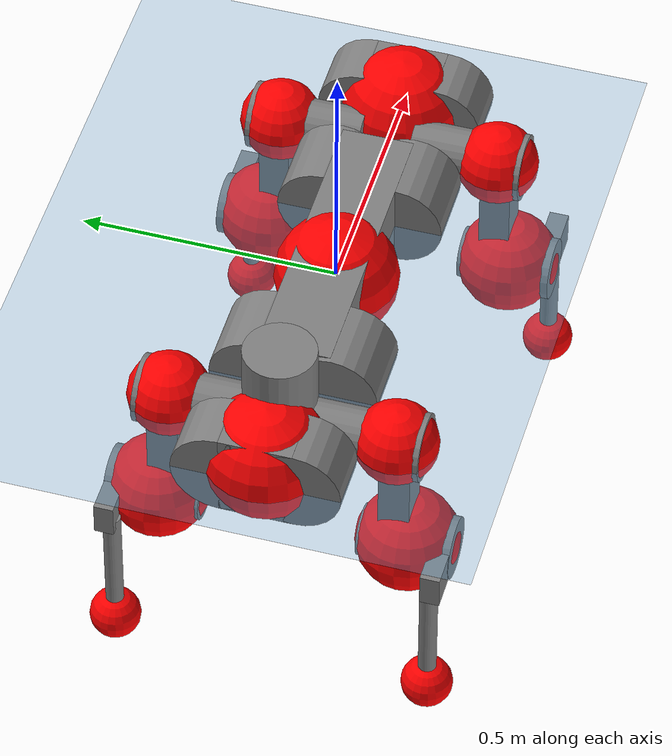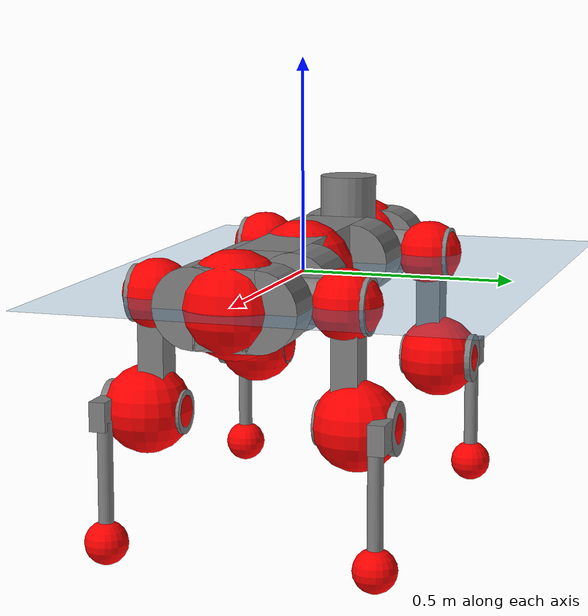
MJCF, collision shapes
<mujoco model="anymal_c">
  <compiler angle="radian" assetdir="assets" balanceinertia="true" inertiafromgeom="false"/>

  <option timestep="0.005" density="1.2" viscosity="2e-05"/>

  <size nkey="1"/>

  <visual>
    <quality shadowsize="8192"/>
    <map shadowclip="0.5"/>
  </visual>

  <default>
    <default class="/">
      <material specular="0" shininess="0.25"/>
      <geom contype="0" conaffinity="0" group="1" solref="-1000 -80"/>
      <site size="0.01 0.005 0.005" group="5"/>
      <general forcelimited="true" forcerange="-80 80" biastype="affine" gainprm="80" biasprm="0 -80 -2"/>
      <default class="anymal_c">
        <joint armature="0.01" damping="0.01" frictionloss="0.1"/>
        <default class="visual">
          <geom type="mesh" group="2"/>
          <default class="visual_zflip"/>
        </default>
        <default class="collision">
          <geom type="cylinder" group="3"/>
          <default class="foot">
            <geom size="0.03 0 0" type="sphere" condim="6" priority="1" friction="0.8 0.02 0.01" solimp="0.015 1 0.03"/>
          </default>
        </default>
      </default>
      <default class="reward_collision_sphere">
        <geom group="5" rgba="1 0 0 1"/>
      </default>
    </default>
  </default>

  <asset>
    <texture type="skybox" colorspace="auto" name="//unnamed_texture_0" builtin="gradient" rgb1="0.95 0.95 0.95" rgb2="0.95 0.95 0.95" width="100" height="600"/>
    <texture type="2d" colorspace="auto" name="texplane" builtin="checker" rgb1="0.345 0.575 0.748" rgb2="0.345 0.575 0.748" markrgb="1 1 1" width="512" height="512"/>
    <texture type="2d" colorspace="linear" name="base" file="base.png"/>
    <texture type="2d" colorspace="linear" name="top_shell" file="top_shell.png"/>
    <texture type="2d" colorspace="linear" name="bottom_shell" file="bottom_shell.png"/>
    <texture type="2d" colorspace="linear" name="remote" file="remote.png"/>
    <texture type="2d" colorspace="linear" name="hatch" file="hatch.png"/>
    <texture type="2d" colorspace="linear" name="handle" file="handle.png"/>
    <texture type="2d" colorspace="linear" name="face" file="face.png"/>
    <texture type="2d" colorspace="linear" name="battery" file="battery.png"/>
    <texture type="2d" colorspace="linear" name="lidar_cage" file="lidar_cage.png"/>
    <texture type="2d" colorspace="linear" name="depth_camera" file="depth_camera.png"/>
    <texture type="2d" colorspace="linear" name="wide_angle_camera" file="wide_angle_camera.png"/>
    <texture type="2d" colorspace="linear" name="lidar" file="lidar.png"/>
    <texture type="2d" colorspace="linear" name="drive" file="drive.png"/>
    <texture type="2d" colorspace="linear" name="hip_l" file="hip_l.png"/>
    <texture type="2d" colorspace="linear" name="shank_l" file="shank_l.png"/>
    <texture type="2d" colorspace="linear" name="foot" file="foot.png"/>
    <texture type="2d" colorspace="linear" name="thigh" file="thigh.png"/>
    <texture type="2d" colorspace="linear" name="shank_r" file="shank_r.png"/>
    <texture type="2d" colorspace="linear" name="hip_r" file="hip_r.png"/>
    <material name="MatPlane" class="/" texture="texplane" texuniform="true" texrepeat="2 2" specular="0.9" shininess="0.5"/>
    <material name="black_plastic" class="/" rgba="0.007 0.007 0.007 1"/>
    <material name="green" class="/" rgba="0.052 0.178 0.033 1"/>
    <material name="red" class="/" rgba="0.178 0.006 0.005 1"/>
    <material name="yellow" class="/" rgba="0.178 0.119 0.006 1"/>
    <material name="lwl" class="/" rgba="0.8 0.8 0.8 1"/>
    <material name="base" class="/" texture="base"/>
    <material name="top_shell" class="/" texture="top_shell"/>
    <material name="bottom_shell" class="/" texture="bottom_shell"/>
    <material name="hip_l" class="/" texture="hip_l"/>
    <material name="thigh" class="/" texture="thigh"/>
    <material name="shank_l" class="/" texture="shank_l"/>
    <material name="foot" class="/" texture="foot"/>
    <material name="hip_r" class="/" texture="hip_r"/>
    <material name="shank" class="/" texture="shank_r"/>
    <material name="hatch" class="/" texture="hatch"/>
    <material name="remote" class="/" texture="remote"/>
    <material name="handle" class="/" texture="handle"/>
    <material name="face" class="/" texture="face"/>
    <material name="depth_camera" class="/" texture="depth_camera"/>
    <material name="wide_angle_camera" class="/" texture="wide_angle_camera"/>
    <material name="battery" class="/" texture="battery"/>
    <material name="lidar_cage" class="/" texture="lidar_cage"/>
    <material name="lidar" class="/" texture="lidar"/>
    <material name="drive" class="/" texture="drive"/>
    <mesh name="base_0" class="/" file="base_0.obj"/>
    <mesh name="base_1" class="/" file="base_1.obj"/>
    <mesh name="base_2" class="/" file="base_2.obj"/>
    <mesh name="base_3" class="/" file="base_3.obj"/>
    <mesh name="base_4" class="/" file="base_4.obj"/>
    <mesh name="base_5" class="/" file="base_5.obj"/>
    <mesh name="top_shell" class="/" file="top_shell.obj"/>
    <mesh name="bottom_shell" class="/" file="bottom_shell.obj"/>
    <mesh name="remote" class="/" file="remote.obj"/>
    <mesh name="handle" class="/" file="handle.obj"/>
    <mesh name="face" class="/" file="face.obj"/>
    <mesh name="wide_angle_camera" class="/" file="wide_angle_camera.obj"/>
    <mesh name="depth_camera" class="/" file="depth_camera.obj"/>
    <mesh name="battery" class="/" file="battery.obj"/>
    <mesh name="lidar_cage" class="/" file="lidar_cage.obj"/>
    <mesh name="lidar" class="/" file="lidar.obj"/>
    <mesh name="drive" class="/" file="drive.obj"/>
    <mesh name="hip_l" class="/" file="hip_l.obj"/>
    <mesh name="thigh" class="/" file="thigh.obj"/>
    <mesh name="shank_l" class="/" file="shank_l.obj"/>
    <mesh name="foot" class="/" file="foot.obj"/>
    <mesh name="hip_r" class="/" file="hip_r.obj"/>
    <mesh name="hatch" class="/" file="hatch.obj"/>
    <mesh name="shank_r" class="/" file="shank_r.obj"/>
  </asset>

  <worldbody>
    <geom name="floor" class="/" size="100 100 0.125" type="plane" group="0" material="MatPlane"/>
    <light name="toplight_shadow" class="/" pos="0 0 5" dir="0.0990148 0.0990148 -0.990148" type="directional" ambient="0.04 0.04 0.04" diffuse="0.55 0.55 0.55" specular="0.12 0.12 0.12"/>
    <light name="toplight_fill" class="/" pos="0 0 5" dir="0.0990148 0.0990148 -0.990148" type="directional" castshadow="false" ambient="0.04 0.04 0.04" diffuse="0.3 0.3 0.3" specular="0.08 0.08 0.08"/>
    <body name="trunk" childclass="anymal_c" pos="-0.00270798 -0.00169693 0.000528753" quat="0.999999 -0.000379506 -0.00039121 0.00101672">
      <inertial pos="-0.000180399 0.000170562 0.0456739" quat="0.500726 0.50189 0.498559 0.498818" mass="18.6225" diaginertia="0.79217 0.719947 0.147786"/>
      <joint name="//unnamed_joint_0" type="free" armature="0" damping="0" frictionloss="0"/>
      <geom name="//unnamed_geom_1" class="visual" material="green" mesh="base_0"/>
      <geom name="//unnamed_geom_2" class="visual" material="yellow" mesh="base_1"/>
      <geom name="//unnamed_geom_3" class="visual" material="red" mesh="base_2"/>
      <geom name="//unnamed_geom_4" class="visual" material="black_plastic" mesh="base_3"/>
      <geom name="//unnamed_geom_5" class="visual" material="lwl" mesh="base_4"/>
      <geom name="//unnamed_geom_6" class="visual" material="base" mesh="base_5"/>
      <geom name="trunk_1" class="collision" size="0.289602 0.069904 0.0898766" type="box"/>
      <geom name="trunk_2" class="collision" size="0.0898766 0.0724006" pos="0.226907 0.0721455 0" quat="0.707107 0 0.707107 0"/>
      <geom name="trunk_3" class="collision" size="0.0898766 0.0724006" pos="-0.226907 0.0721455 0" quat="0.707107 0 0.707107 0"/>
      <geom name="trunk_4" class="collision" size="0.0898766 0.0724006" pos="0.226907 -0.0721455 0" quat="0.707107 0 0.707107 0"/>
      <geom name="trunk_5" class="collision" size="0.0898766 0.0724006" pos="-0.226907 -0.0721455 0" quat="0.707107 0 0.707107 0"/>
      <geom name="//unnamed_geom_12" class="visual" material="top_shell" mesh="top_shell"/>
      <geom name="//unnamed_geom_13" class="visual" material="bottom_shell" mesh="bottom_shell"/>
      <geom name="//unnamed_geom_14" class="visual" material="remote" mesh="remote"/>
      <geom name="//unnamed_geom_15" class="visual" material="handle" mesh="handle"/>
      <geom name="//unnamed_geom_16" class="visual" pos="0.432428 0 0" quat="1 0 0 0" material="face" mesh="face"/>
      <geom name="trunk_6" class="collision" size="0.0549246 0.069904 0.0898766" pos="0.489807 0 0" type="box"/>
      <geom name="//unnamed_geom_18" class="collision" size="0.0898766 0.0549246" pos="0.489807 0.0721455 0" quat="0.707107 0 0.707107 0"/>
      <geom name="//unnamed_geom_19" class="collision" size="0.0898766 0.0549246" pos="0.489807 -0.0721455 0" quat="0.707107 0 0.707107 0"/>
      <geom name="//unnamed_geom_20" class="visual" pos="0.481613 0 -0.0260003" quat="0.965926 0 0.258819 0" material="depth_camera" mesh="depth_camera"/>
      <geom name="//unnamed_geom_21" class="visual" pos="0.535189 0 0.0138021" material="wide_angle_camera" mesh="wide_angle_camera"/>
      <geom name="//unnamed_geom_22" class="visual_zflip" pos="-0.432428 0 0" quat="0 0 0 1" material="face" mesh="face"/>
      <geom name="trunk_7" class="collision" size="0.0549246 0.069904 0.0898766" pos="-0.489807 0 0" quat="0 0 0 1" type="box"/>
      <geom name="//unnamed_geom_24" class="collision" size="0.0898766 0.0549246" pos="-0.489807 -0.0721455 0" quat="0 -0.707107 0 0.707107"/>
      <geom name="//unnamed_geom_25" class="collision" size="0.0898766 0.0549246" pos="-0.489807 0.0721455 0" quat="0 -0.707107 0 0.707107"/>
      <geom name="//unnamed_geom_26" class="visual" pos="-0.481613 0 -0.0260003" quat="0 -0.258819 0 0.965926" material="depth_camera" mesh="depth_camera"/>
      <geom name="//unnamed_geom_27" class="visual_zflip" pos="-0.535189 0 0.0138021" quat="0 0 0 1" material="wide_angle_camera" mesh="wide_angle_camera"/>
      <geom name="//unnamed_geom_28" class="visual" material="battery" mesh="battery"/>
      <geom name="//unnamed_geom_29" class="visual" pos="0 0.0786331 0.0277053" quat="0.683013 -0.183013 0.183013 0.683013" material="depth_camera" mesh="depth_camera"/>
      <geom name="//unnamed_geom_30" class="visual" pos="0 -0.0786331 0.0277053" quat="0.683013 0.183013 0.183013 -0.683013" material="depth_camera" mesh="depth_camera"/>
      <geom name="//unnamed_geom_31" class="visual" pos="-0.379744 0 0.0677659" quat="1 0 0 0" material="lidar_cage" mesh="lidar_cage"/>
      <geom name="trunk_8" class="collision" size="0.069904 0.0599178" pos="-0.379744 0 0.123085"/>
      <geom name="//unnamed_geom_33" class="visual" pos="-0.379744 -4.9514e-06 0.131106" quat="0.707107 0 0 -0.707107" material="lidar" mesh="lidar"/>
      <geom name="//unnamed_geom_34" class="visual" pos="0.312872 0.107149 1.87448e-09" quat="0.258819 0.965926 0 0" material="drive" mesh="drive"/>
      <geom name="//unnamed_geom_35" class="visual" pos="0.312872 -0.107149 -1.87448e-09" quat="0.258819 -0.965926 0 0" material="drive" mesh="drive"/>
      <geom name="//unnamed_geom_36" class="visual" pos="-0.312872 0.107149 -1.87448e-09" quat="0 0 0.965926 -0.258819" material="drive" mesh="drive"/>
      <geom name="//unnamed_geom_37" class="visual" pos="-0.312872 -0.107149 1.87448e-09" quat="0 0 -0.965926 -0.258819" material="drive" mesh="drive"/>
      <geom name="//unnamed_geom_38" class="visual" pos="0.121017 0 0.0673049" quat="1 0 0 0" material="hatch" mesh="hatch"/>
      <geom name="//unnamed_geom_39" class="reward_collision_sphere" size="0.119836"/>
      <geom name="//unnamed_geom_40" class="reward_collision_sphere" size="0.119836" pos="0.469464 0 0"/>
      <geom name="//unnamed_geom_41" class="reward_collision_sphere" size="0.119836" pos="-0.469464 0 0"/>
      <site name="imu" pos="0.261734 0.00509479 0.0479558" size="0.00998629"/>
      <camera name="track" pos="0 -2.0613 0" quat="0.707107 0.707107 0 0" mode="trackcom"/>
      <camera name="ego_camera" pos="0.469464 0 -0.0368794" quat="-0.5 -0.5 0.5 0.5"/>
      <body name="LF_HIP" pos="0.313101 0.1067 0.000122913" quat="0.259102 0.965849 0.00071427 0.000995938">
        <inertial pos="0.0564921 -0.0158208 -0.00801739" quat="-0.130593 0.709426 -0.135759 0.679139" mass="2.8698" diaginertia="0.00752878 0.00570399 0.00227938"/>
        <joint name="LF_HAA" pos="0 0 0" axis="0.999994 0.000221287 0.00345938" range="-0.7284 0.438964" armature="0.0110327" damping="0.00207456" frictionloss="0.0982118"/>
        <geom name="//unnamed_geom_42" class="visual" pos="0 0.000110267 -1.81113e-05" quat="0.258819 -0.965926 0 0" material="hip_l" mesh="hip_l"/>
        <geom name="//unnamed_geom_43" class="visual" pos="0.0624908 -0.0755164 -0.0427957" quat="0.183013 -0.683013 0.683013 0.183013" material="drive" mesh="drive"/>
        <geom name="//unnamed_geom_44" class="collision" size="0.0499315 0.069904" pos="0.0624908 -0.0123264 -0.00636631" quat="-0.353553 -0.612372 0.612372 -0.353553"/>
        <body name="LF_THIGH" pos="0.0635029 -0.0764436 -0.0389707" quat="0.183342 -0.682997 0.68296 0.182935">
          <inertial pos="0.0350284 0.000547825 -0.223823" quat="0.992999 -0.00530295 -0.0827837 0.0840986" mass="3.0856" diaginertia="0.0371351 0.0341541 0.00279577"/>
          <joint name="LF_HFE" pos="0 0 0" axis="0.999997 -0.00247545 -0.000557237" stiffness="0.0138555" range="-3.19127 3.1788" armature="0.0110217" damping="0" frictionloss="0.101109"/>
          <geom name="//unnamed_geom_45" class="visual" pos="0.000250751 3.95125e-07 0" quat="0.707107 0 0 -0.707107" material="thigh" mesh="thigh"/>
          <geom name="//unnamed_geom_46" class="collision" size="0.0649109 0.0399452" pos="0.0417301 0 0" quat="0.5 0.5 -0.5 -0.5"/>
          <geom name="//unnamed_geom_47" class="collision" size="0.0374486 0.0299589 0.14112" pos="0.0312976 0 -0.130289" quat="0.707107 0 0 -0.707107" type="box"/>
          <geom name="//unnamed_geom_48" class="visual" pos="0.104638 0 -0.262766" quat="1 0 0 0" material="drive" mesh="drive"/>
          <geom name="//unnamed_geom_49" class="collision" size="0.0499315 0.069904" pos="0.0316106 0 -0.262766" quat="0.707107 0 0.707107 0"/>
          <geom name="//unnamed_geom_50" class="reward_collision_sphere" size="0.0798903" pos="0.0260813 0 0"/>
          <body name="LF_SHANK" pos="0.104005 -0.00074623 -0.263339" quat="1 0.000402712 -0.000457447 0.000105433">
            <inertial pos="0.00665032 -0.0626013 -0.0763997" quat="0.992222 -0.118634 -0.00506615 -0.0373519" mass="0.579193" diaginertia="0.0127193 0.010803 0.000733172"/>
            <joint name="LF_KFE" pos="0 0 0" axis="0.99998 -0.00596694 -0.00198585" range="-3.14564 3.09059" armature="0.0096644" damping="0.0101283" frictionloss="0.101896"/>
            <geom name="//unnamed_geom_51" class="visual" pos="8.17645e-05 0.000435973 0" quat="0.707107 0 0 -0.707107" material="shank_l" mesh="shank_l"/>
            <geom name="LF_kfe_act" class="collision" size="0.0599178 0.0199726" pos="0.0208651 0 0" quat="0.5 0.5 -0.5 -0.5"/>
            <geom name="//unnamed_geom_53" class="collision" size="0.0574202 0.0337037 0.018974" pos="0.0208651 -0.0592613 0" quat="0.5 0.5 -0.5 -0.5" type="box"/>
            <geom name="//unnamed_geom_54" class="visual" pos="0.0136144 -0.0905051 -0.311603" quat="0.382683 0 0 -0.92388" material="foot" mesh="foot"/>
            <geom name="LF_calf" class="collision" size="0.017476 0.141058" pos="0.0136144 -0.0906456 -0.155802" quat="0.707107 0 0 -0.707107"/>
            <geom name="LF_foot" class="foot" size="0.0313958" pos="0.0136144 -0.0906456 -0.290859" quat="0.707107 0 0 -0.707107"/>
            <geom name="//unnamed_geom_57" class="reward_collision_sphere" size="0.0998629" pos="-0.0521626 0 0"/>
            <geom name="//unnamed_geom_58" class="reward_collision_sphere" size="0.0499315" pos="0.0136144 -0.0906456 -0.290859"/>
            <site name="LF_foot" class="foot" pos="0.0136144 -0.0906456 -0.290859" quat="0.707107 0 0 -0.707107" size="0.00998629"/>
          </body>
        </body>
      </body>
      <body name="RF_HIP" pos="0.313531 -0.105297 0.00201225" quat="0.258739 -0.965947 -4.45148e-05 0.000162472">
        <inertial pos="0.0614894 0.0151385 -0.00755339" quat="0.13681 0.678541 0.130215 0.709865" mass="2.91496" diaginertia="0.00744354 0.00591373 0.00220272"/>
        <joint name="RF_HAA" pos="0 0 0" axis="1 -0.000431587 -0.000806338" range="-0.478146 0.72678" armature="0.00864745" damping="0.00907798" frictionloss="0.113379"/>
        <geom name="//unnamed_geom_59" class="visual" pos="0 -0.000110266 -1.81112e-05" quat="0.258819 0.965926 0 0" material="hip_r" mesh="hip_r"/>
        <geom name="//unnamed_geom_60" class="visual" pos="0.0624908 0.0755164 -0.0427957" quat="0.183013 0.683013 0.683013 -0.183013" material="drive" mesh="drive"/>
        <geom name="//unnamed_geom_61" class="collision" size="0.0499315 0.069904" pos="0.0624908 0.0123264 -0.00636631" quat="-0.353553 0.612372 0.612372 0.353553"/>
        <body name="RF_THIGH" pos="0.0621226 0.0750439 -0.0366954" quat="0.183803 0.682693 0.682859 -0.183981">
          <inertial pos="0.0304365 -0.00281364 -0.225052" quat="0.992759 -0.00367494 -0.0818514 0.0878463" mass="2.9826" diaginertia="0.0375903 0.0351605 0.0027323"/>
          <joint name="RF_HFE" pos="0 0 0" axis="0.999989 -0.0030879 0.00348408" stiffness="0.00720258" range="-3.12208 3.15262" armature="0.00997358" damping="0.00978834" frictionloss="0.0984469"/>
          <geom name="//unnamed_geom_62" class="visual" pos="0.000250751 3.95125e-07 0" quat="0.707107 0 0 -0.707107" material="thigh" mesh="thigh"/>
          <geom name="//unnamed_geom_63" class="collision" size="0.0649109 0.0399452" pos="0.0417301 0 0" quat="0.5 0.5 0.5 0.5"/>
          <geom name="//unnamed_geom_64" class="collision" size="0.0374486 0.0299589 0.14112" pos="0.0312976 0 -0.130289" quat="0.707107 0 0 0.707107" type="box"/>
          <geom name="//unnamed_geom_65" class="visual" pos="0.104638 0 -0.262766" quat="1 0 0 0" material="drive" mesh="drive"/>
          <geom name="//unnamed_geom_66" class="collision" size="0.0499315 0.069904" pos="0.0316106 0 -0.262766" quat="0.707107 0 0.707107 0"/>
          <geom name="//unnamed_geom_67" class="reward_collision_sphere" size="0.0798903" pos="0.0260813 0 0"/>
          <body name="RF_SHANK" pos="0.105661 -0.000285025 -0.26099" quat="1 -0.000113997 2.16992e-05 -6.47726e-05">
            <inertial pos="0.00647263 0.0629585 -0.0731449" quat="0.993065 0.114476 -0.000155492 0.026789" mass="0.595304" diaginertia="0.0133331 0.0108075 0.000773094"/>
            <joint name="RF_KFE" pos="0 0 0" axis="0.999911 0.011342 -0.00697365" range="-3.12856 3.13887" armature="0.0102202" damping="0.0112142" frictionloss="0.0944964"/>
            <geom name="//unnamed_geom_68" class="visual" pos="8.17641e-05 -0.000435972 0" quat="0.707107 0 0 0.707107" material="shank" mesh="shank_r"/>
            <geom name="RF_kfe_act" class="collision" size="0.0599178 0.0199726" pos="0.0208651 0 0" quat="0.5 0.5 0.5 0.5"/>
            <geom name="//unnamed_geom_70" class="collision" size="0.0574202 0.0337037 0.018974" pos="0.0208651 0.0592613 0" quat="0.5 0.5 0.5 0.5" type="box"/>
            <geom name="//unnamed_geom_71" class="visual" pos="0.0136145 0.0905051 -0.311603" quat="0.382683 0 0 0.92388" material="foot" mesh="foot"/>
            <geom name="RF_calf" class="collision" size="0.017476 0.141058" pos="0.0136144 0.0906456 -0.155802" quat="0.707107 0 0 0.707107"/>
            <geom name="RF_foot" class="foot" size="0.0294341" pos="0.0136144 0.0906456 -0.290859" quat="0.707107 0 0 0.707107"/>
            <geom name="//unnamed_geom_74" class="reward_collision_sphere" size="0.0998629" pos="-0.0521626 0 0"/>
            <geom name="//unnamed_geom_75" class="reward_collision_sphere" size="0.0499315" pos="0.0136144 0.0906456 -0.290859"/>
            <site name="RF_foot" class="foot" pos="0.0136144 0.0906456 -0.290859" quat="0.707107 0 0 0.707107" size="0.00998629"/>
          </body>
        </body>
      </body>
      <body name="LH_HIP" pos="-0.311965 0.105967 0.00153012" quat="-0.000311186 0.000457325 0.966223 -0.257708">
        <inertial pos="0.0619598 0.0166211 -0.00758614" quat="0.135471 0.679333 0.127634 0.709834" mass="2.75215" diaginertia="0.00730128 0.00589833 0.00223675"/>
        <joint name="LH_HAA" pos="0 0 0" axis="0.999987 -0.00493975 0.000951022" range="-0.47543 0.712731" armature="0.0099844" damping="0.00941764" frictionloss="0.0970415"/>
        <geom name="//unnamed_geom_76" class="visual" pos="0 -0.000110266 -1.81112e-05" quat="-0.258819 -0.965926 0 0" material="hip_r" mesh="hip_r"/>
        <geom name="//unnamed_geom_77" class="visual" pos="0.0624908 0.0755164 -0.0427957" quat="0.183013 0.683013 0.683013 -0.183013" material="drive" mesh="drive"/>
        <geom name="//unnamed_geom_78" class="collision" size="0.0499315 0.069904" pos="0.0624908 0.0123264 -0.00636631" quat="-0.353553 0.612372 0.612372 0.353553"/>
        <body name="LH_THIGH" pos="0.0591167 0.0748762 -0.0370925" quat="0.182911 0.683831 0.682186 -0.183143">
          <inertial pos="0.0320766 0.000690457 -0.225624" quat="0.992189 -0.0110897 -0.0754649 0.0987096" mass="2.9646" diaginertia="0.0368934 0.0338131 0.00275722"/>
          <joint name="LH_HFE" pos="0 0 0" axis="0.999987 -0.00102393 0.00508369" range="-3.12996 3.13942" armature="0.00931063" damping="0" frictionloss="0.103755"/>
          <geom name="//unnamed_geom_79" class="visual" pos="0.000250751 3.95125e-07 0" quat="0.707107 0 0 -0.707107" material="thigh" mesh="thigh"/>
          <geom name="//unnamed_geom_80" class="collision" size="0.0649109 0.0399452" pos="0.0417301 0 0" quat="0.5 0.5 -0.5 -0.5"/>
          <geom name="//unnamed_geom_81" class="collision" size="0.0374486 0.0299589 0.14112" pos="0.0312976 0 -0.130289" quat="0.707107 0 0 -0.707107" type="box"/>
          <geom name="//unnamed_geom_82" class="visual" pos="0.104638 0 -0.262766" quat="1 0 0 0" material="drive" mesh="drive"/>
          <geom name="//unnamed_geom_83" class="collision" size="0.0499315 0.069904" pos="0.0316106 0 -0.262766" quat="0.707107 0 0.707107 0"/>
          <geom name="//unnamed_geom_84" class="reward_collision_sphere" size="0.0798903" pos="0.0260813 0 0"/>
          <body name="LH_SHANK" pos="0.103707 -0.00107809 -0.262898" quat="1 0.000124481 0.000199909 -2.25123e-05">
            <inertial pos="0.00559436 0.0629065 -0.0735395" quat="0.992955 0.11564 -0.000451082 0.0258569" mass="0.582477" diaginertia="0.0125625 0.0107728 0.000737978"/>
            <joint name="LH_KFE" pos="0 0 0" axis="0.999995 0.00324692 0.000353854" range="-3.1216 3.14023" armature="0.010103" damping="0" frictionloss="0.0979016"/>
            <geom name="//unnamed_geom_85" class="visual" pos="8.17641e-05 -0.000435972 0" quat="-0.707107 0 0 -0.707107" material="shank" mesh="shank_r"/>
            <geom name="LH_kfe_act" class="collision" size="0.0599178 0.0199726" pos="0.0208651 0 0" quat="0.5 0.5 -0.5 -0.5"/>
            <geom name="//unnamed_geom_87" class="collision" size="0.0574202 0.0337037 0.018974" pos="0.0208651 0.0592613 0" quat="0.5 0.5 -0.5 -0.5" type="box"/>
            <geom name="//unnamed_geom_88" class="visual" pos="0.0136145 0.0905051 -0.311603" quat="-0.382683 0 0 -0.92388" material="foot" mesh="foot"/>
            <geom name="LH_calf" class="collision" size="0.017476 0.141058" pos="0.0136144 0.0906456 -0.155802" quat="0.707107 0 0 -0.707107"/>
            <geom name="LH_foot" class="foot" size="0.0327608" pos="0.0136144 0.0906456 -0.290859" quat="0.707107 0 0 -0.707107"/>
            <geom name="//unnamed_geom_91" class="reward_collision_sphere" size="0.0998629" pos="-0.0521626 0 0"/>
            <geom name="//unnamed_geom_92" class="reward_collision_sphere" size="0.0499315" pos="0.0136144 0.0906456 -0.290859"/>
            <site name="LH_foot" class="foot" pos="0.0136144 0.0906456 -0.290859" quat="0.707107 0 0 -0.707107" size="0.00998629"/>
          </body>
        </body>
      </body>
      <body name="RH_HIP" pos="-0.3137 -0.109681 0.00244035" quat="-0.00090897 0.000104872 -0.965988 -0.258587">
        <inertial pos="0.0590284 -0.0136662 -0.00767976" quat="-0.124805 0.711408 -0.122606 0.680654" mass="2.75561" diaginertia="0.00729488 0.00579142 0.00219879"/>
        <joint name="RH_HAA" pos="0 0 0" axis="0.999994 -0.00168916 0.00302879" stiffness="0.00787145" range="-0.7356 0.489882" armature="0.011452" damping="0.0226315" frictionloss="0.0872359"/>
        <geom name="//unnamed_geom_93" class="visual" pos="0 0.000110267 -1.81113e-05" quat="-0.258819 0.965926 0 0" material="hip_l" mesh="hip_l"/>
        <geom name="//unnamed_geom_94" class="visual" pos="0.0624908 -0.0755164 -0.0427957" quat="-0.183013 0.683013 -0.683013 -0.183013" material="drive" mesh="drive"/>
        <geom name="//unnamed_geom_95" class="collision" size="0.0499315 0.069904" pos="0.0624908 -0.0123264 -0.00636631" quat="0.353553 0.612372 -0.612372 0.353553"/>
        <body name="RH_THIGH" pos="0.0626682 -0.0742466 -0.0410031" quat="-0.183047 0.683112 -0.682921 -0.182948">
          <inertial pos="0.0321312 -0.000446395 -0.225818" quat="0.993041 -0.0049483 -0.0804762 0.0858394" mass="3.07704" diaginertia="0.0378496 0.035187 0.00271728"/>
          <joint name="RH_HFE" pos="0 0 0" axis="0.999985 0.00536748 -0.00129913" range="-3.19342 3.16861" armature="0.01028" damping="0.0131556" frictionloss="0.105222"/>
          <geom name="//unnamed_geom_96" class="visual" pos="0.000250751 3.95125e-07 0" quat="0.707107 0 0 -0.707107" material="thigh" mesh="thigh"/>
          <geom name="//unnamed_geom_97" class="collision" size="0.0649109 0.0399452" pos="0.0417301 0 0" quat="0.5 0.5 0.5 0.5"/>
          <geom name="//unnamed_geom_98" class="collision" size="0.0374486 0.0299589 0.14112" pos="0.0312976 0 -0.130289" quat="0.707107 0 0 0.707107" type="box"/>
          <geom name="//unnamed_geom_99" class="visual" pos="0.104638 0 -0.262766" quat="1 0 0 0" material="drive" mesh="drive"/>
          <geom name="//unnamed_geom_100" class="collision" size="0.0499315 0.069904" pos="0.0316106 0 -0.262766" quat="0.707107 0 0.707107 0"/>
          <geom name="//unnamed_geom_101" class="reward_collision_sphere" size="0.0798903" pos="0.0260813 0 0"/>
          <body name="RH_SHANK" pos="0.10162 0.00230532 -0.263302" quat="1 -0.000165843 0.000441285 7.3758e-05">
            <inertial pos="0.00840005 -0.0630442 -0.0737543" quat="0.993059 -0.115372 -0.00099453 -0.0228465" mass="0.585078" diaginertia="0.0122334 0.0101395 0.000733783"/>
            <joint name="RH_KFE" pos="0 0 0" axis="0.999991 -0.0040609 -0.00102738" range="-3.08422 3.18819" armature="0.00880402" damping="0.00418783" frictionloss="0.0946207"/>
            <geom name="//unnamed_geom_102" class="visual" pos="8.17645e-05 0.000435973 0" quat="0.707107 0 0 -0.707107" material="shank_l" mesh="shank_l"/>
            <geom name="RH_kfe_act" class="collision" size="0.0599178 0.0199726" pos="0.0208651 0 0" quat="0.5 0.5 0.5 0.5"/>
            <geom name="//unnamed_geom_104" class="collision" size="0.0574202 0.0337037 0.018974" pos="0.0208651 -0.0592613 0" quat="0.5 0.5 0.5 0.5" type="box"/>
            <geom name="//unnamed_geom_105" class="visual" pos="0.0136144 -0.0905051 -0.311603" quat="0.382683 0 0 -0.92388" material="foot" mesh="foot"/>
            <geom name="RH_calf" class="collision" size="0.017476 0.141058" pos="0.0136144 -0.0906456 -0.155802" quat="0.707107 0 0 0.707107"/>
            <geom name="RH_foot" class="foot" size="0.0304405" pos="0.0136144 -0.0906456 -0.290859" quat="0.707107 0 0 0.707107"/>
            <geom name="//unnamed_geom_108" class="reward_collision_sphere" size="0.0998629" pos="-0.0521626 0 0"/>
            <geom name="//unnamed_geom_109" class="reward_collision_sphere" size="0.0499315" pos="0.0136144 -0.0906456 -0.290859"/>
            <site name="RH_foot" class="foot" pos="0.0136144 -0.0906456 -0.290859" quat="0.707107 0 0 0.707107" size="0.00998629"/>
          </body>
        </body>
      </body>
    </body>
  </worldbody>

  <contact>
    <pair class="/" geom1="floor" geom2="LF_foot" name="//unnamed_contact_0"/>
    <pair class="/" geom1="floor" geom2="RF_foot" name="//unnamed_contact_1"/>
    <pair class="/" geom1="floor" geom2="LH_foot" name="//unnamed_contact_2"/>
    <pair class="/" geom1="floor" geom2="RH_foot" name="//unnamed_contact_3"/>
  </contact>

  <actuator>
    <general name="LF_HAA" class="/" joint="LF_HAA" forcerange="-80.0016 80.0016" gainprm="81.0211" biasprm="0 -81.0211 -1.88527"/>
    <general name="LF_HFE" class="/" joint="LF_HFE" forcerange="-79.2166 79.2166" gainprm="81.0211" biasprm="0 -81.0211 -1.88527"/>
    <general name="LF_KFE" class="/" joint="LF_KFE" forcerange="-80.6475 80.6475" gainprm="81.0211" biasprm="0 -81.0211 -1.88527"/>
    <general name="RF_HAA" class="/" joint="RF_HAA" forcerange="-88.3818 88.3818" gainprm="81.0211" biasprm="0 -81.0211 -1.88527"/>
    <general name="RF_HFE" class="/" joint="RF_HFE" forcerange="-80.1946 80.1946" gainprm="81.0211" biasprm="0 -81.0211 -1.88527"/>
    <general name="RF_KFE" class="/" joint="RF_KFE" forcerange="-74.2769 74.2769" gainprm="81.0211" biasprm="0 -81.0211 -1.88527"/>
    <general name="LH_HAA" class="/" joint="LH_HAA" forcerange="-79.455 79.455" gainprm="81.0211" biasprm="0 -81.0211 -1.88527"/>
    <general name="LH_HFE" class="/" joint="LH_HFE" forcerange="-79.6174 79.6174" gainprm="81.0211" biasprm="0 -81.0211 -1.88527"/>
    <general name="LH_KFE" class="/" joint="LH_KFE" forcerange="-81.5915 81.5915" gainprm="81.0211" biasprm="0 -81.0211 -1.88527"/>
    <general name="RH_HAA" class="/" joint="RH_HAA" forcerange="-78.4653 78.4653" gainprm="81.0211" biasprm="0 -81.0211 -1.88527"/>
    <general name="RH_HFE" class="/" joint="RH_HFE" forcerange="-83.08 83.08" gainprm="81.0211" biasprm="0 -81.0211 -1.88527"/>
    <general name="RH_KFE" class="/" joint="RH_KFE" forcerange="-88.0295 88.0295" gainprm="81.0211" biasprm="0 -81.0211 -1.88527"/>
  </actuator>

  <sensor>
    <gyro site="imu" name="imu_angular_velocity"/>
    <velocimeter site="imu" name="imu_linear_velocity"/>
    <framelinvel objtype="site" objname="LF_foot" name="LF_foot_global_linear_velocity"/>
    <framelinvel objtype="site" objname="RF_foot" name="RF_foot_global_linear_velocity"/>
    <framelinvel objtype="site" objname="LH_foot" name="LH_foot_global_linear_velocity"/>
    <framelinvel objtype="site" objname="RH_foot" name="RH_foot_global_linear_velocity"/>
  </sensor>

  <keyframe>
    <key name="home" qpos="0 0 0.55 1 0 0 0 0 0.4 -0.8 0 -0.4 0.8 0 -0.4 0.8 0 0.4 -0.8"/>
  </keyframe>
</mujoco>
